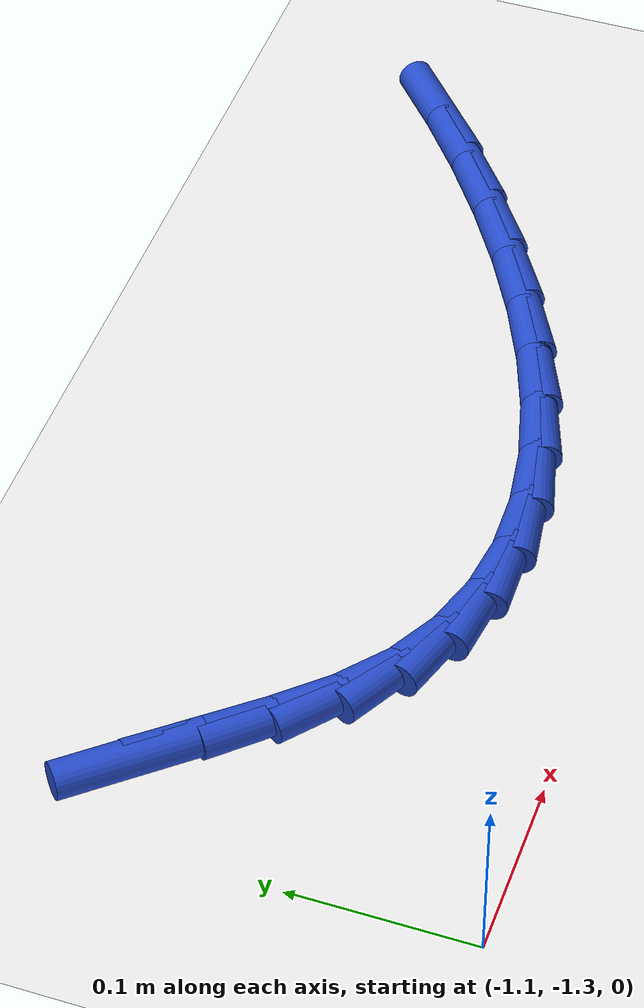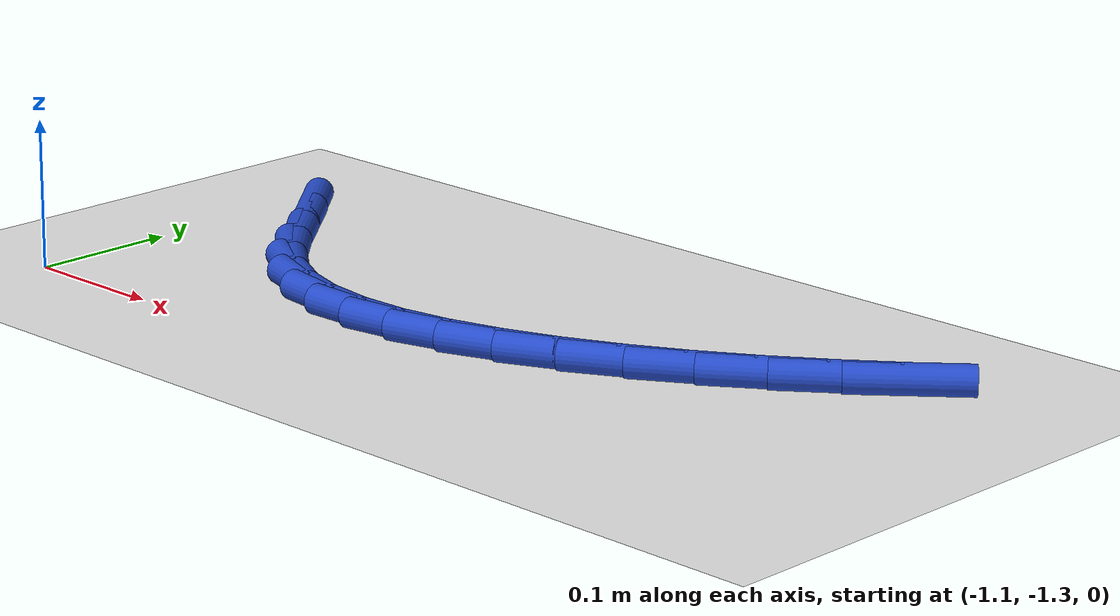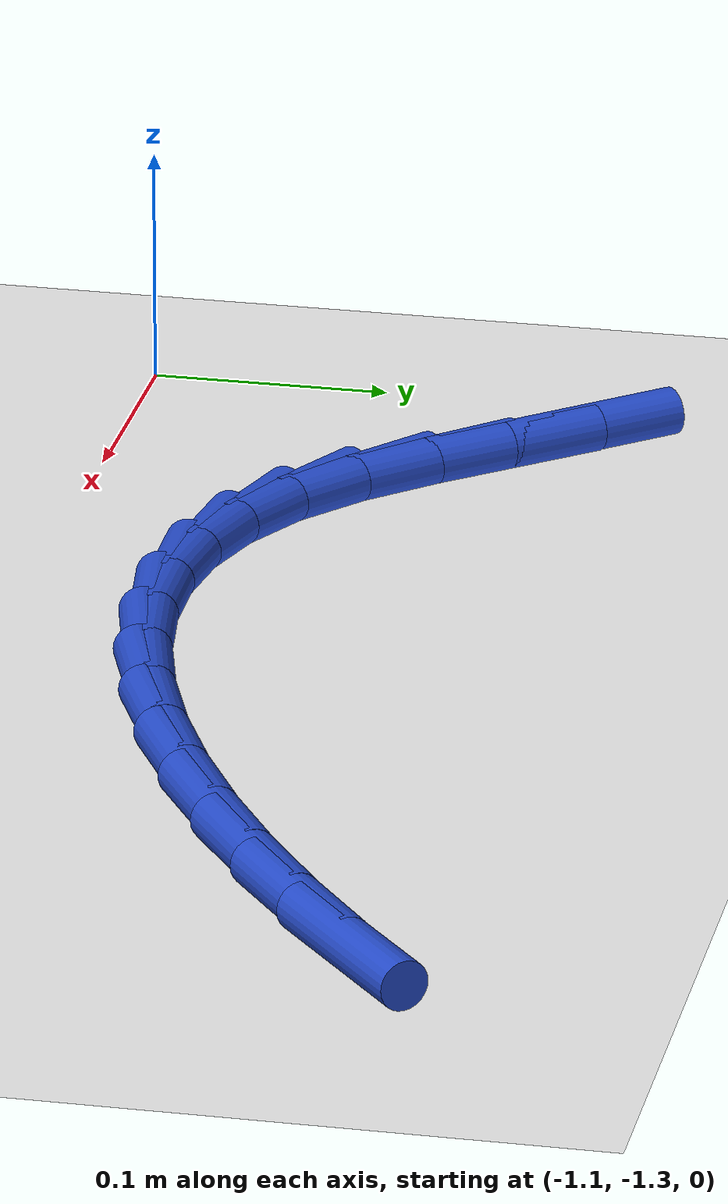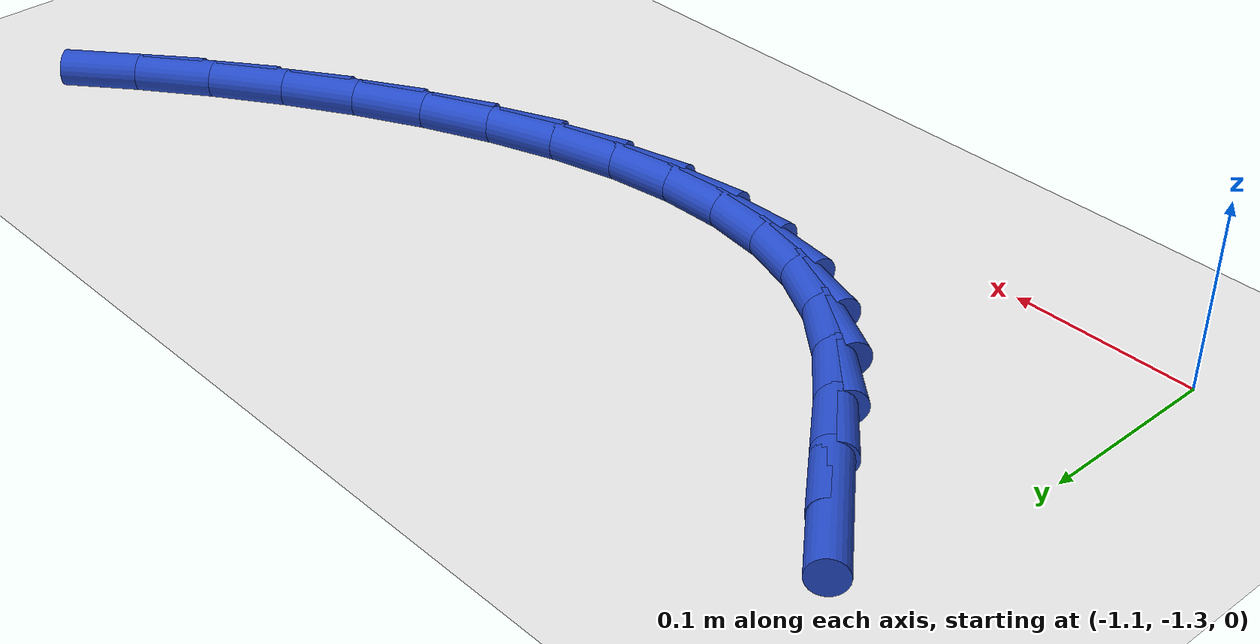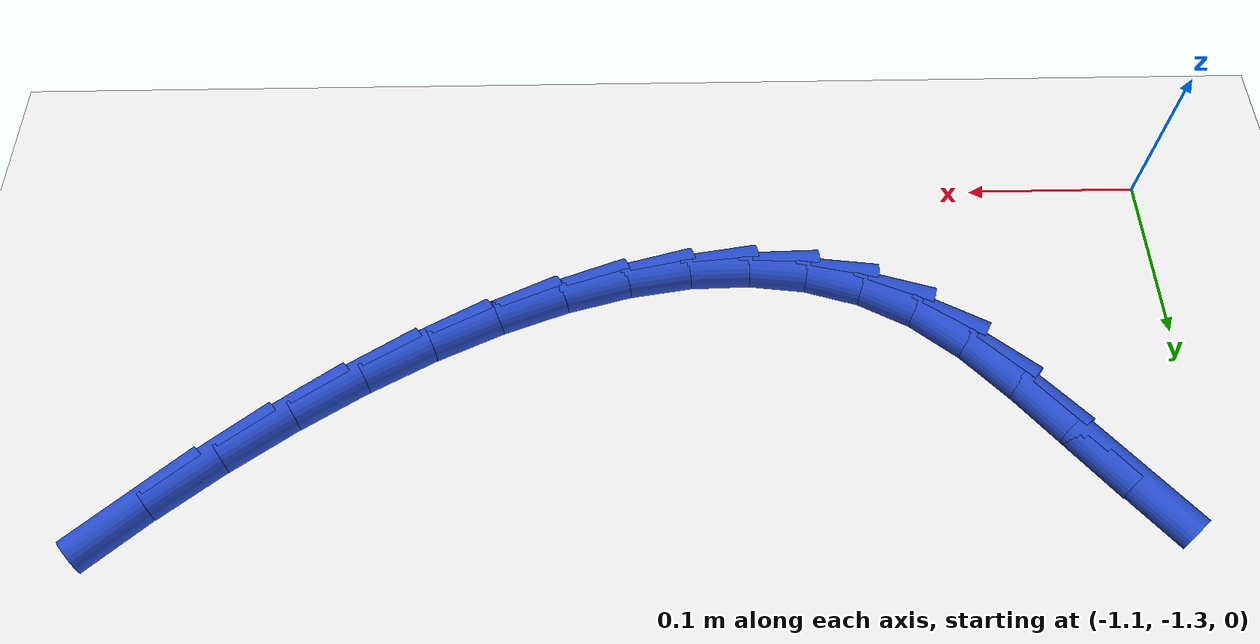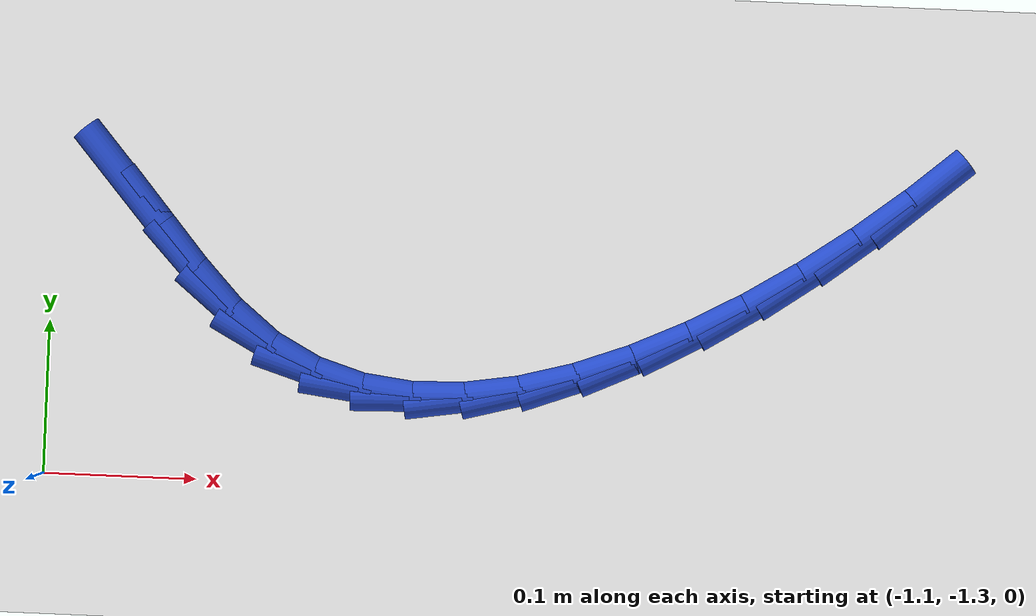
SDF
<sdf version="1.6">
 <world name="default">
  <model name="ground_plane">
   <static>1</static>
   <link name="link">
    <collision name="collision">
     <geometry><plane><normal>0 0 1</normal><size>100 100</size></plane></geometry>
     <surface><friction><ode><mu>100</mu><mu2>50</mu2></ode></friction></surface>
    </collision>
    <visual name="visual">
     <cast_shadows>0</cast_shadows>
     <geometry><plane><normal>0 0 1</normal><size>100 100</size></plane></geometry>
     <material>
      <script><uri>file://media/materials/scripts/gazebo.material</uri><name>Gazebo/WhiteGlow</name></script>
     </material>
    </visual>
   </link>
  </model>
  <model name="line">
   <link name="link_150">
    <pose>-1.0547983720507537 -1.1042755358842007 0.01 0 1.57 -0.8639891494950215</pose>
    <collision name="collision">
     <geometry><cylinder><radius>0.01</radius><length>0.08</length></cylinder></geometry>
    </collision>
    <visual name="visual">
     <material>
      <script><name>Gazebo/Blue</name><uri>file://media/materials/scripts/gazebo.material</uri></script>
     </material>
     <geometry><cylinder><radius>0.01</radius><length>0.08</length></cylinder></geometry>
    </visual>
   </link>
   <link name="link_151">
    <pose>-1.030457462894087 -1.1327780319715732 0.01 0 1.57 -0.8758386302447989</pose>
    <collision name="collision">
     <geometry><cylinder><radius>0.01</radius><length>0.08</length></cylinder></geometry>
    </collision>
    <visual name="visual">
     <material>
      <script><name>Gazebo/Blue</name><uri>file://media/materials/scripts/gazebo.material</uri></script>
     </material>
     <geometry><cylinder><radius>0.01</radius><length>0.08</length></cylinder></geometry>
    </visual>
   </link>
   <link name="link_152">
    <pose>-1.0064339208852693 -1.1615934239076926 0.01 0 1.57 -0.8204354795455251</pose>
    <collision name="collision">
     <geometry><cylinder><radius>0.01</radius><length>0.08</length></cylinder></geometry>
    </collision>
    <visual name="visual">
     <material>
      <script><name>Gazebo/Blue</name><uri>file://media/materials/scripts/gazebo.material</uri></script>
     </material>
     <geometry><cylinder><radius>0.01</radius><length>0.08</length></cylinder></geometry>
    </visual>
   </link>
   <link name="link_153">
    <pose>-0.9816365361182218 -1.1881923341650404 0.01 0 1.57 -0.687066546325457</pose>
    <collision name="collision">
     <geometry><cylinder><radius>0.01</radius><length>0.08</length></cylinder></geometry>
    </collision>
    <visual name="visual">
     <material>
      <script><name>Gazebo/Blue</name><uri>file://media/materials/scripts/gazebo.material</uri></script>
     </material>
     <geometry><cylinder><radius>0.01</radius><length>0.08</length></cylinder></geometry>
    </visual>
   </link>
   <link name="link_154">
    <pose>-0.9549814745324927 -1.2100605822230126 0.01 0 1.57 -0.49433165663756096</pose>
    <collision name="collision">
     <geometry><cylinder><radius>0.01</radius><length>0.08</length></cylinder></geometry>
    </collision>
    <visual name="visual">
     <material>
      <script><name>Gazebo/Blue</name><uri>file://media/materials/scripts/gazebo.material</uri></script>
     </material>
     <geometry><cylinder><radius>0.01</radius><length>0.08</length></cylinder></geometry>
    </visual>
   </link>
   <link name="link_155">
    <pose>-0.9258958448831407 -1.2257367212937225 0.01 0 1.57 -0.3021194418533437</pose>
    <collision name="collision">
     <geometry><cylinder><radius>0.01</radius><length>0.08</length></cylinder></geometry>
    </collision>
    <visual name="visual">
     <material>
      <script><name>Gazebo/Blue</name><uri>file://media/materials/scripts/gazebo.material</uri></script>
     </material>
     <geometry><cylinder><radius>0.01</radius><length>0.08</length></cylinder></geometry>
    </visual>
   </link>
   <link name="link_156">
    <pose>-0.8946407668412285 -1.2354776797147986 0.01 0 1.57 -0.1268932162901091</pose>
    <collision name="collision">
     <geometry><cylinder><radius>0.01</radius><length>0.08</length></cylinder></geometry>
    </collision>
    <visual name="visual">
     <material>
      <script><name>Gazebo/Blue</name><uri>file://media/materials/scripts/gazebo.material</uri></script>
     </material>
     <geometry><cylinder><radius>0.01</radius><length>0.08</length></cylinder></geometry>
    </visual>
   </link>
   <link name="link_157">
    <pose>-0.8615542531102467 -1.239698814294909 0.01 0 1.57 0.025539098038083144</pose>
    <collision name="collision">
     <geometry><cylinder><radius>0.01</radius><length>0.08</length></cylinder></geometry>
    </collision>
    <visual name="visual">
     <material>
      <script><name>Gazebo/Blue</name><uri>file://media/materials/scripts/gazebo.material</uri></script>
     </material>
     <geometry><cylinder><radius>0.01</radius><length>0.08</length></cylinder></geometry>
    </visual>
   </link>
   <link name="link_158">
    <pose>-0.8269743163936876 -1.238815481842722 0.01 0 1.57 0.1546906369201225</pose>
    <collision name="collision">
     <geometry><cylinder><radius>0.01</radius><length>0.08</length></cylinder></geometry>
    </collision>
    <visual name="visual">
     <material>
      <script><name>Gazebo/Blue</name><uri>file://media/materials/scripts/gazebo.material</uri></script>
     </material>
     <geometry><cylinder><radius>0.01</radius><length>0.08</length></cylinder></geometry>
    </visual>
   </link>
   <link name="link_159">
    <pose>-0.7912389693950421 -1.2332430391669047 0.01 0 1.57 0.26312412145869213</pose>
    <collision name="collision">
     <geometry><cylinder><radius>0.01</radius><length>0.08</length></cylinder></geometry>
    </collision>
    <visual name="visual">
     <material>
      <script><name>Gazebo/Blue</name><uri>file://media/materials/scripts/gazebo.material</uri></script>
     </material>
     <geometry><cylinder><radius>0.01</radius><length>0.08</length></cylinder></geometry>
    </visual>
   </link>
   <link name="link_160">
    <pose>-0.7546862248178027 -1.2233968430761268 0.01 0 1.57 0.35444416183067623</pose>
    <collision name="collision">
     <geometry><cylinder><radius>0.01</radius><length>0.08</length></cylinder></geometry>
    </collision>
    <visual name="visual">
     <material>
      <script><name>Gazebo/Blue</name><uri>file://media/materials/scripts/gazebo.material</uri></script>
     </material>
     <geometry><cylinder><radius>0.01</radius><length>0.08</length></cylinder></geometry>
    </visual>
   </link>
   <link name="link_161">
    <pose>-0.7176540953654607 -1.2096922503790553 0.01 0 1.57 0.4321999975013791</pose>
    <collision name="collision">
     <geometry><cylinder><radius>0.01</radius><length>0.08</length></cylinder></geometry>
    </collision>
    <visual name="visual">
     <material>
      <script><name>Gazebo/Blue</name><uri>file://media/materials/scripts/gazebo.material</uri></script>
     </material>
     <geometry><cylinder><radius>0.01</radius><length>0.08</length></cylinder></geometry>
    </visual>
   </link>
   <link name="link_162">
    <pose>-0.6804805937415072 -1.1925446178843584 0.01 0 1.57 0.4994742398753003</pose>
    <collision name="collision">
     <geometry><cylinder><radius>0.01</radius><length>0.08</length></cylinder></geometry>
    </collision>
    <visual name="visual">
     <material>
      <script><name>Gazebo/Blue</name><uri>file://media/materials/scripts/gazebo.material</uri></script>
     </material>
     <geometry><cylinder><radius>0.01</radius><length>0.08</length></cylinder></geometry>
    </visual>
   </link>
   <link name="link_163">
    <pose>-0.6435037326494348 -1.172369302400705 0.01 0 1.57 0.558821508655084</pose>
    <collision name="collision">
     <geometry><cylinder><radius>0.01</radius><length>0.08</length></cylinder></geometry>
    </collision>
    <visual name="visual">
     <material>
      <script><name>Gazebo/Blue</name><uri>file://media/materials/scripts/gazebo.material</uri></script>
     </material>
     <geometry><cylinder><radius>0.01</radius><length>0.08</length></cylinder></geometry>
    </visual>
   </link>
   <link name="link_164">
    <pose>-0.6070615247927346 -1.1495816607367622 0.01 0 1.57 0.6123455198090797</pose>
    <collision name="collision">
     <geometry><cylinder><radius>0.01</radius><length>0.08</length></cylinder></geometry>
    </collision>
    <visual name="visual">
     <material>
      <script><name>Gazebo/Blue</name><uri>file://media/materials/scripts/gazebo.material</uri></script>
     </material>
     <geometry><cylinder><radius>0.01</radius><length>0.08</length></cylinder></geometry>
    </visual>
   </link>
   <link name="link_165">
    <pose>-0.5714919828748982 -1.1245970497011983 0.01 0 1.57 0.6618163757283401</pose>
    <collision name="collision">
     <geometry><cylinder><radius>0.01</radius><length>0.08</length></cylinder></geometry>
    </collision>
    <visual name="visual">
     <material>
      <script><name>Gazebo/Blue</name><uri>file://media/materials/scripts/gazebo.material</uri></script>
     </material>
     <geometry><cylinder><radius>0.01</radius><length>0.08</length></cylinder></geometry>
    </visual>
   </link>
   <link name="link_166">
    <pose>-0.5371331195994176 -1.0978308261026821 0.01 0 1.57 0.7087927201506895</pose>
    <collision name="collision">
     <geometry><cylinder><radius>0.01</radius><length>0.08</length></cylinder></geometry>
    </collision>
    <visual name="visual">
     <material>
      <script><name>Gazebo/Blue</name><uri>file://media/materials/scripts/gazebo.material</uri></script>
     </material>
     <geometry><cylinder><radius>0.01</radius><length>0.08</length></cylinder></geometry>
    </visual>
   </link>
  </model>
 </world>
</sdf>
